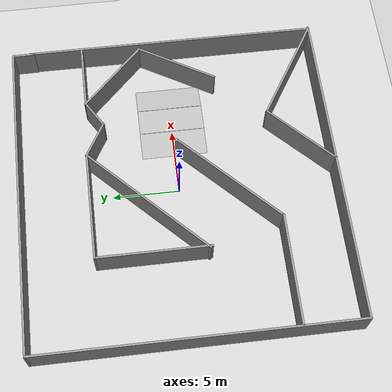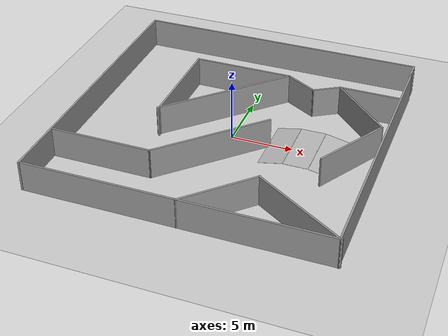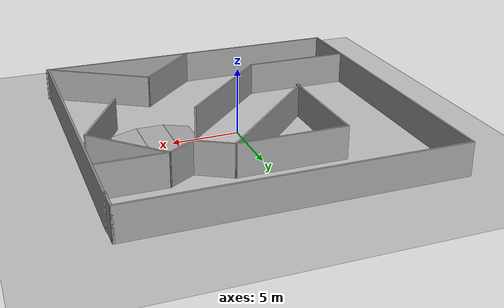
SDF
<?xml version="1.0" ?>

<sdf version="1.5">
    <world name="default">
        <!-- Target real time factor is the product of max_step_size and real_time_update_rate -->
        <!-- Negative real_time_update_rate means that Gazebo will run as fast as possible -->
        <physics type="ode">
            <type>world</type>
            <max_step_size>0.002</max_step_size>
            <real_time_update_rate>500</real_time_update_rate>
            <iters>500</iters>
        </physics>
        <!-- A global light source -->
        <include>
            <uri>model://sun</uri>
        </include>
        <!-- A ground plane -->
        <include>
            <uri>model://ground_plane</uri>
        </include>
        <!-- A custom maze/map model -->
        <include>
            <uri>model://my_world</uri>
            <pose>0 0 0 0 0 0</pose>
        </include>
        <model name="box0">
            <static>true</static>
            <pose>4 0 0.2 0 -0.2 0</pose>
            <link name="link">
                <collision name="collision">
                <geometry>
                    <box>
                    <size>2 5 .01</size>
                    </box>
                </geometry>
                </collision>
                <visual name="visual">
                <geometry>
                    <box>
                    <size>2 5 .01</size>
                    </box>
                </geometry>
                </visual>
            </link>
        </model>
        <model name="box1">
            <static>true</static>
            <pose>6 0 0.4 0 0 0</pose>
            <link name="link">
                <collision name="collision">
                <geometry>
                    <box>
                    <size>2 5 .01</size>
                    </box>
                </geometry>
                </collision>
                <visual name="visual">
                <geometry>
                    <box>
                    <size>2 5 .01</size>
                    </box>
                </geometry>
                </visual>
            </link>
        </model>
        <model name="box2">
            <static>true</static>
            <pose>8 0 0.2 0 0.2 0</pose>
            <link name="link">
                <collision name="collision">
                <geometry>
                    <box>
                    <size>2 5 .01</size>
                    </box>
                </geometry>
                </collision>
                <visual name="visual">
                <geometry>
                    <box>
                    <size>2 5 .01</size>
                    </box>
                </geometry>
                </visual>
            </link>
        </model>
    </world>
</sdf>

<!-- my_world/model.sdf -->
<sdf version='1.7'>
  <model name='my_world'>
    <pose>7.4078 9.30355 0 0 -0 0</pose>
    <link name='Wall_10'>
      <collision name='Wall_10_Collision'>
        <geometry>
          <box>
            <size>23.6251 0.15 2.5</size>
          </box>
        </geometry>
        <pose>0 0 1.25 0 -0 0</pose>
      </collision>
      <visual name='Wall_10_Visual'>
        <pose>0 0 1.25 0 -0 0</pose>
        <geometry>
          <box>
            <size>23.6251 0.15 2.5</size>
          </box>
        </geometry>
        <material>
          <script>
            <uri>file://media/materials/scripts/gazebo.material</uri>
            <name>Gazebo/Grey</name>
          </script>
          <ambient>1 1 1 1</ambient>
        </material>
        <meta>
          <layer>0</layer>
        </meta>
      </visual>
      <pose>-11.9664 0.000132 0 0 -0 -1.5708</pose>
    </link>
    <link name='Wall_13'>
      <collision name='Wall_13_Collision'>
        <geometry>
          <box>
            <size>8.25 0.15 2.5</size>
          </box>
        </geometry>
        <pose>0 0 1.25 0 -0 0</pose>
      </collision>
      <visual name='Wall_13_Visual'>
        <pose>0 0 1.25 0 -0 0</pose>
        <geometry>
          <box>
            <size>8.25 0.15 2.5</size>
          </box>
        </geometry>
        <material>
          <script>
            <uri>file://media/materials/scripts/gazebo.material</uri>
            <name>Gazebo/Grey</name>
          </script>
          <ambient>1 1 1 1</ambient>
        </material>
        <meta>
          <layer>0</layer>
        </meta>
      </visual>
      <pose>-7.86151 -7.0946 0 0 -0 0</pose>
    </link>
    <link name='Wall_15'>
      <collision name='Wall_15_Collision'>
        <geometry>
          <box>
            <size>24 0.15 2.5</size>
          </box>
        </geometry>
        <pose>0 0 1.25 0 -0 0</pose>
      </collision>
      <visual name='Wall_15_Visual'>
        <pose>0 0 1.25 0 -0 0</pose>
        <geometry>
          <box>
            <size>24 0.15 2.5</size>
          </box>
        </geometry>
        <material>
          <script>
            <uri>file://media/materials/scripts/gazebo.material</uri>
            <name>Gazebo/Grey</name>
          </script>
          <ambient>1 1 1 1</ambient>
        </material>
        <meta>
          <layer>0</layer>
        </meta>
      </visual>
      <pose>-0.041384 11.7377 0 0 -0 0</pose>
    </link>
    <link name='Wall_16'>
      <collision name='Wall_16_Collision'>
        <geometry>
          <box>
            <size>1.75 0.15 2.5</size>
          </box>
        </geometry>
        <pose>0 0 1.25 0 -0 0</pose>
      </collision>
      <visual name='Wall_16_Visual'>
        <pose>0 0 1.25 0 -0 0</pose>
        <geometry>
          <box>
            <size>1.75 0.15 2.5</size>
          </box>
        </geometry>
        <material>
          <script>
            <uri>file://media/materials/scripts/gazebo.material</uri>
            <name>Gazebo/Grey</name>
          </script>
          <ambient>1 1 1 1</ambient>
        </material>
        <meta>
          <layer>0</layer>
        </meta>
      </visual>
      <pose>11.8836 10.9377 0 0 -0 -1.5708</pose>
    </link>
    <link name='Wall_18'>
      <collision name='Wall_18_Collision'>
        <geometry>
          <box>
            <size>10 0.15 2.5</size>
          </box>
        </geometry>
        <pose>0 0 1.25 0 -0 0</pose>
      </collision>
      <visual name='Wall_18_Visual'>
        <pose>0 0 1.25 0 -0 0</pose>
        <geometry>
          <box>
            <size>10 0.15 2.5</size>
          </box>
        </geometry>
        <material>
          <script>
            <uri>file://media/materials/scripts/gazebo.material</uri>
            <name>Gazebo/Grey</name>
          </script>
          <ambient>1 1 1 1</ambient>
        </material>
        <meta>
          <layer>0</layer>
        </meta>
      </visual>
      <pose>-0.32901 -3.61211 0 0 -0 0.785398</pose>
    </link>
    <link name='Wall_20'>
      <collision name='Wall_20_Collision'>
        <geometry>
          <box>
            <size>6.5 0.15 2.5</size>
          </box>
        </geometry>
        <pose>0 0 1.25 0 -0 0</pose>
      </collision>
      <visual name='Wall_20_Visual'>
        <pose>0 0 1.25 0 -0 0</pose>
        <geometry>
          <box>
            <size>6.5 0.15 2.5</size>
          </box>
        </geometry>
        <material>
          <script>
            <uri>file://media/materials/scripts/gazebo.material</uri>
            <name>Gazebo/Grey</name>
          </script>
          <ambient>1 1 1 1</ambient>
        </material>
        <meta>
          <layer>0</layer>
        </meta>
      </visual>
      <pose>2.53105 -9.46153 0 0 -0 0.785398</pose>
    </link>
    <link name='Wall_21'>
      <collision name='Wall_21_Collision'>
        <geometry>
          <box>
            <size>8.50467 0.15 2.5</size>
          </box>
        </geometry>
        <pose>0 0 1.25 0 -0 0</pose>
      </collision>
      <visual name='Wall_21_Visual'>
        <pose>0 0 1.25 0 -0 0</pose>
        <geometry>
          <box>
            <size>8.50467 0.15 2.5</size>
          </box>
        </geometry>
        <material>
          <script>
            <uri>file://media/materials/scripts/gazebo.material</uri>
            <name>Gazebo/Grey</name>
          </script>
          <ambient>1 1 1 1</ambient>
        </material>
        <meta>
          <layer>0</layer>
        </meta>
      </visual>
      <pose>8.31732 -9.43232 0 0 -0 -0.559127</pose>
    </link>
    <link name='Wall_23'>
      <collision name='Wall_23_Collision'>
        <geometry>
          <box>
            <size>11.75 0.15 2.5</size>
          </box>
        </geometry>
        <pose>0 0 1.25 0 -0 0</pose>
      </collision>
      <visual name='Wall_23_Visual'>
        <pose>0 0 1.25 0 -0 0</pose>
        <geometry>
          <box>
            <size>11.75 0.15 2.5</size>
          </box>
        </geometry>
        <material>
          <script>
            <uri>file://media/materials/scripts/gazebo.material</uri>
            <name>Gazebo/Grey</name>
          </script>
          <ambient>1 1 1 1</ambient>
        </material>
        <meta>
          <layer>0</layer>
        </meta>
      </visual>
      <pose>-1.53148 2.51021 0 0 -0 0.785398</pose>
    </link>
    <link name='Wall_24'>
      <collision name='Wall_24_Collision'>
        <geometry>
          <box>
            <size>8.25 0.15 2.5</size>
          </box>
        </geometry>
        <pose>0 0 1.25 0 -0 0</pose>
      </collision>
      <visual name='Wall_24_Visual'>
        <pose>0 0 1.25 0 -0 0</pose>
        <geometry>
          <box>
            <size>8.25 0.15 2.5</size>
          </box>
        </geometry>
        <material>
          <script>
            <uri>file://media/materials/scripts/gazebo.material</uri>
            <name>Gazebo/Grey</name>
          </script>
          <ambient>1 1 1 1</ambient>
        </material>
        <meta>
          <layer>0</layer>
        </meta>
      </visual>
      <pose>-1.48027 6.61143 0 0 -0 3.14159</pose>
    </link>
    <link name='Wall_25'>
      <collision name='Wall_25_Collision'>
        <geometry>
          <box>
            <size>8.5 0.15 2.5</size>
          </box>
        </geometry>
        <pose>0 0 1.25 0 -0 0</pose>
      </collision>
      <visual name='Wall_25_Visual'>
        <pose>0 0 1.25 0 -0 0</pose>
        <geometry>
          <box>
            <size>8.5 0.15 2.5</size>
          </box>
        </geometry>
        <material>
          <script>
            <uri>file://media/materials/scripts/gazebo.material</uri>
            <name>Gazebo/Grey</name>
          </script>
          <ambient>1 1 1 1</ambient>
        </material>
        <meta>
          <layer>0</layer>
        </meta>
      </visual>
      <pose>-5.53027 2.43643 0 0 -0 -1.5708</pose>
    </link>
    <link name='Wall_27'>
      <collision name='Wall_27_Collision'>
        <geometry>
          <box>
            <size>5 0.15 2.5</size>
          </box>
        </geometry>
        <pose>0 0 1.25 0 -0 0</pose>
      </collision>
      <visual name='Wall_27_Visual'>
        <pose>0 0 1.25 0 -0 0</pose>
        <geometry>
          <box>
            <size>5 0.15 2.5</size>
          </box>
        </geometry>
        <material>
          <script>
            <uri>file://media/materials/scripts/gazebo.material</uri>
            <name>Gazebo/Grey</name>
          </script>
          <ambient>1 1 1 1</ambient>
        </material>
        <meta>
          <layer>0</layer>
        </meta>
      </visual>
      <pose>9.37554 6.37233 0 0 -0 3.14159</pose>
    </link>
    <link name='Wall_28'>
      <collision name='Wall_28_Collision'>
        <geometry>
          <box>
            <size>6.5 0.15 2.5</size>
          </box>
        </geometry>
        <pose>0 0 1.25 0 -0 0</pose>
      </collision>
      <visual name='Wall_28_Visual'>
        <pose>0 0 1.25 0 -0 0</pose>
        <geometry>
          <box>
            <size>6.5 0.15 2.5</size>
          </box>
        </geometry>
        <material>
          <script>
            <uri>file://media/materials/scripts/gazebo.material</uri>
            <name>Gazebo/Grey</name>
          </script>
          <ambient>1 1 1 1</ambient>
        </material>
        <meta>
          <layer>0</layer>
        </meta>
      </visual>
      <pose>9.19561 4.12726 0 0 -0 -0.785398</pose>
    </link>
    <link name='Wall_29'>
      <collision name='Wall_29_Collision'>
        <geometry>
          <box>
            <size>6.5 0.15 2.5</size>
          </box>
        </geometry>
        <pose>0 0 1.25 0 -0 0</pose>
      </collision>
      <visual name='Wall_29_Visual'>
        <pose>0 0 1.25 0 -0 0</pose>
        <geometry>
          <box>
            <size>6.5 0.15 2.5</size>
          </box>
        </geometry>
        <material>
          <script>
            <uri>file://media/materials/scripts/gazebo.material</uri>
            <name>Gazebo/Grey</name>
          </script>
          <ambient>1 1 1 1</ambient>
        </material>
        <meta>
          <layer>0</layer>
        </meta>
      </visual>
      <pose>9.85317 -0.867432 0 0 -0 -2.0944</pose>
    </link>
    <link name='Wall_31'>
      <collision name='Wall_31_Collision'>
        <geometry>
          <box>
            <size>3 0.15 2.5</size>
          </box>
        </geometry>
        <pose>0 0 1.25 0 -0 0</pose>
      </collision>
      <visual name='Wall_31_Visual'>
        <pose>0 0 1.25 0 -0 0</pose>
        <geometry>
          <box>
            <size>3 0.15 2.5</size>
          </box>
        </geometry>
        <material>
          <script>
            <uri>file://media/materials/scripts/gazebo.material</uri>
            <name>Gazebo/Grey</name>
          </script>
          <ambient>1 1 1 1</ambient>
        </material>
        <meta>
          <layer>0</layer>
        </meta>
      </visual>
      <pose>3.80382 5.89893 0 0 -0 -0.523599</pose>
    </link>
    <link name='Wall_32'>
      <collision name='Wall_32_Collision'>
        <geometry>
          <box>
            <size>2.40045 0.15 2.5</size>
          </box>
        </geometry>
        <pose>0 0 1.25 0 -0 0</pose>
      </collision>
      <visual name='Wall_32_Visual'>
        <pose>0 0 1.25 0 -0 0</pose>
        <geometry>
          <box>
            <size>2.40045 0.15 2.5</size>
          </box>
        </geometry>
        <material>
          <script>
            <uri>file://media/materials/scripts/gazebo.material</uri>
            <name>Gazebo/Grey</name>
          </script>
          <ambient>1 1 1 1</ambient>
        </material>
        <meta>
          <layer>0</layer>
        </meta>
      </visual>
      <pose>5.99422 5.77938 0 0 -0 0.555019</pose>
    </link>
    <link name='Wall_7'>
      <collision name='Wall_7_Collision'>
        <geometry>
          <box>
            <size>23.914 0.15 2.5</size>
          </box>
        </geometry>
        <pose>0 0 1.25 0 -0 0</pose>
      </collision>
      <visual name='Wall_7_Visual'>
        <pose>0 0 1.25 0 -0 0</pose>
        <geometry>
          <box>
            <size>23.914 0.15 2.5</size>
          </box>
        </geometry>
        <material>
          <script>
            <uri>file://media/materials/scripts/gazebo.material</uri>
            <name>Gazebo/Grey</name>
          </script>
          <ambient>1 1 1 1</ambient>
        </material>
        <meta>
          <layer>0</layer>
        </meta>
      </visual>
      <pose>0.084193 -11.6867 0 0 -0 0.003241</pose>
    </link>
    <link name='Wall_8'>
      <collision name='Wall_8_Collision'>
        <geometry>
          <box>
            <size>22.1445 0.15 2.5</size>
          </box>
        </geometry>
        <pose>0 0 1.25 0 -0 0</pose>
      </collision>
      <visual name='Wall_8_Visual'>
        <pose>0 0 1.25 0 -0 0</pose>
        <geometry>
          <box>
            <size>22.1445 0.15 2.5</size>
          </box>
        </geometry>
        <material>
          <script>
            <uri>file://media/materials/scripts/gazebo.material</uri>
            <name>Gazebo/Grey</name>
          </script>
          <ambient>1 1 1 1</ambient>
        </material>
        <meta>
          <layer>0</layer>
        </meta>
      </visual>
      <pose>11.897 -0.650973 0 0 -0 1.56729</pose>
    </link>
    <static>1</static>
  </model>
</sdf>
